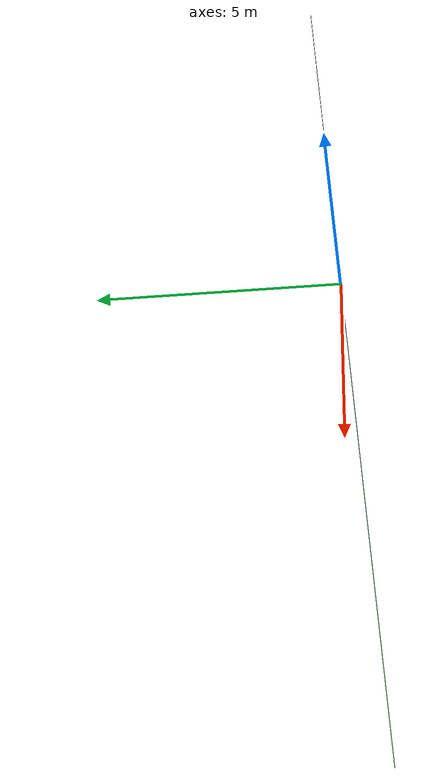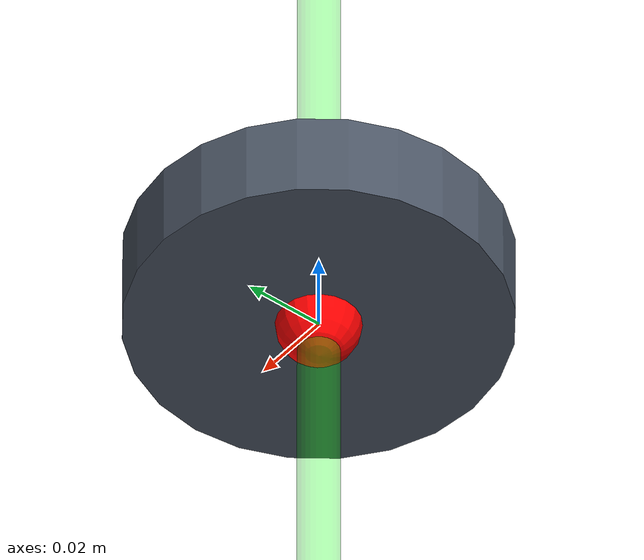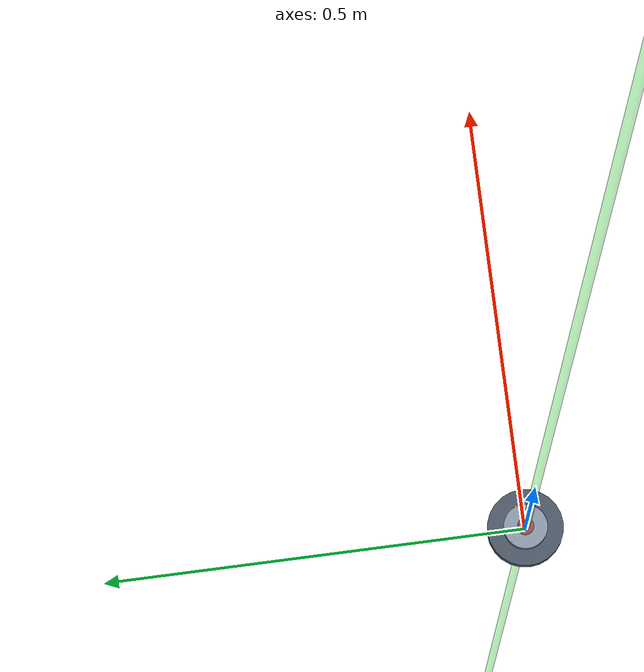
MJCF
<mujoco model="quick_changer_master">
    <worldbody>
        <body name="qc_master_base" pos="0 0 0">
            <!-- robosuite 표준 힘/토크 센서 프레임 -->
            <site name="ft_frame" pos="0 0 0" size="0.01" rgba="1 0 0 1" type="sphere" group="1"/>
            <inertial pos="0 0 0.018" mass="0.25" diaginertia="4e-4 4e-4 4e-4"/>

            <!-- ===== OUTER MODEL (외형) : 로봇 측 마스터 플레이트 + 결합 보스 ===== -->
            <!-- 마스터 플레이트(플랜지에 붙는 원판). 시각 + 충돌. -->
            <geom name="qc_plate" type="cylinder" size="0.045 0.011" pos="0 0 0.011"
                  rgba="0.30 0.34 0.40 1" group="0" contype="1" conaffinity="1"/>
            <geom name="qc_plate_vis" type="cylinder" size="0.045 0.011" pos="0 0 0.011"
                  rgba="0.30 0.34 0.40 1" group="1" contype="0" conaffinity="0"/>
            <!-- 결합 보스(수 커플러, EE 측과 맞물릴 면). 시각 + 충돌. -->
            <geom name="qc_boss" type="cylinder" size="0.026 0.007" pos="0 0 0.029"
                  rgba="0.55 0.60 0.66 1" group="0" contype="1" conaffinity="1"/>
            <geom name="qc_boss_vis" type="cylinder" size="0.026 0.007" pos="0 0 0.029"
                  rgba="0.55 0.60 0.66 1" group="1" contype="0" conaffinity="0"/>
            <!-- 정렬 키(방향 표시용 작은 돌기). 시각용. -->
            <geom name="qc_key_vis" type="box" size="0.006 0.010 0.006" pos="0.020 0 0.029"
                  rgba="0.9 0.7 0.2 1" group="1" contype="0" conaffinity="0"/>

            <!-- 결합 인터페이스 면 = EE 가 도킹할 면. 이름은 반드시 "eef". -->
            <body name="eef" pos="0 0 0.036" quat="0.707105 0 0 -0.707105">
                <site name="grip_site" pos="0 0 0" size="0.01" rgba="1 0 0 0.5" type="sphere" group="1"/>
                <site name="ee_x" pos="0.1 0 0" size="0.005 .1" quat="0.707105 0 0.707108 0" rgba="1 0 0 0" type="cylinder" group="1"/>
                <site name="ee_y" pos="0 0.1 0" size="0.005 .1" quat="0.707105 0.707108 0 0" rgba="0 1 0 0" type="cylinder" group="1"/>
                <site name="ee_z" pos="0 0 0.1" size="0.005 .1" quat="1 0 0 0" rgba="0 0 1 0" type="cylinder" group="1"/>
                <site name="grip_site_cylinder" pos="0 0 0" size="0.005 10" rgba="0 1 0 0.3" type="cylinder" group="1"/>
            </body>
        </body>
    </worldbody>

    <sensor>
        <force name="force_ee" site="ft_frame"/>
        <torque name="torque_ee" site="ft_frame"/>
    </sensor>
</mujoco>
